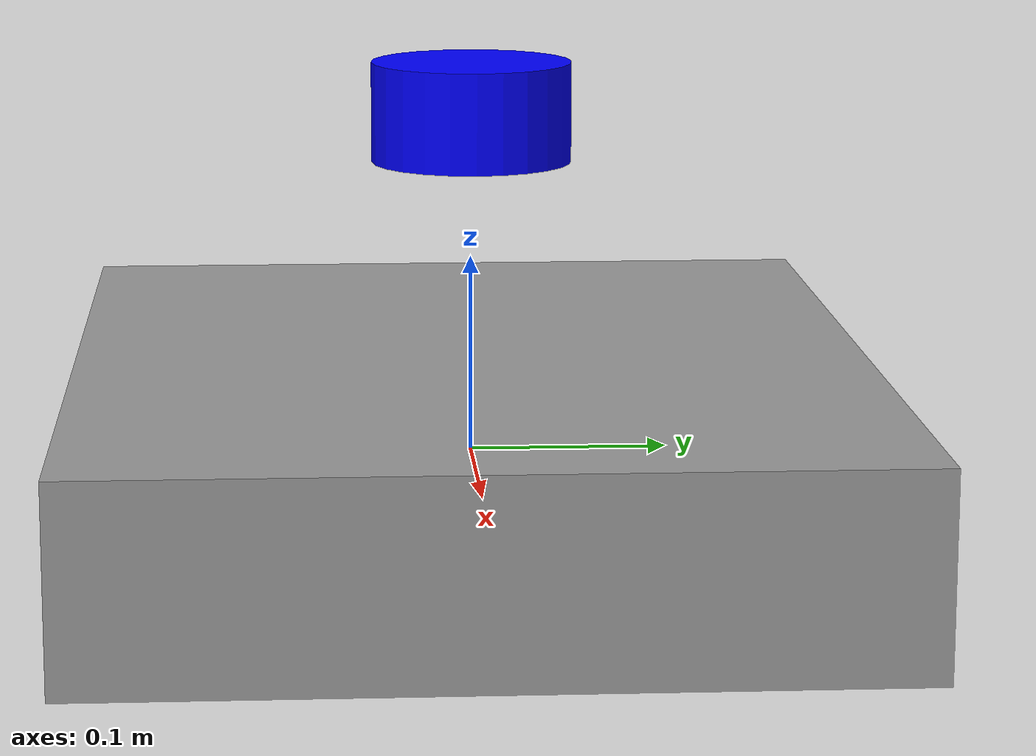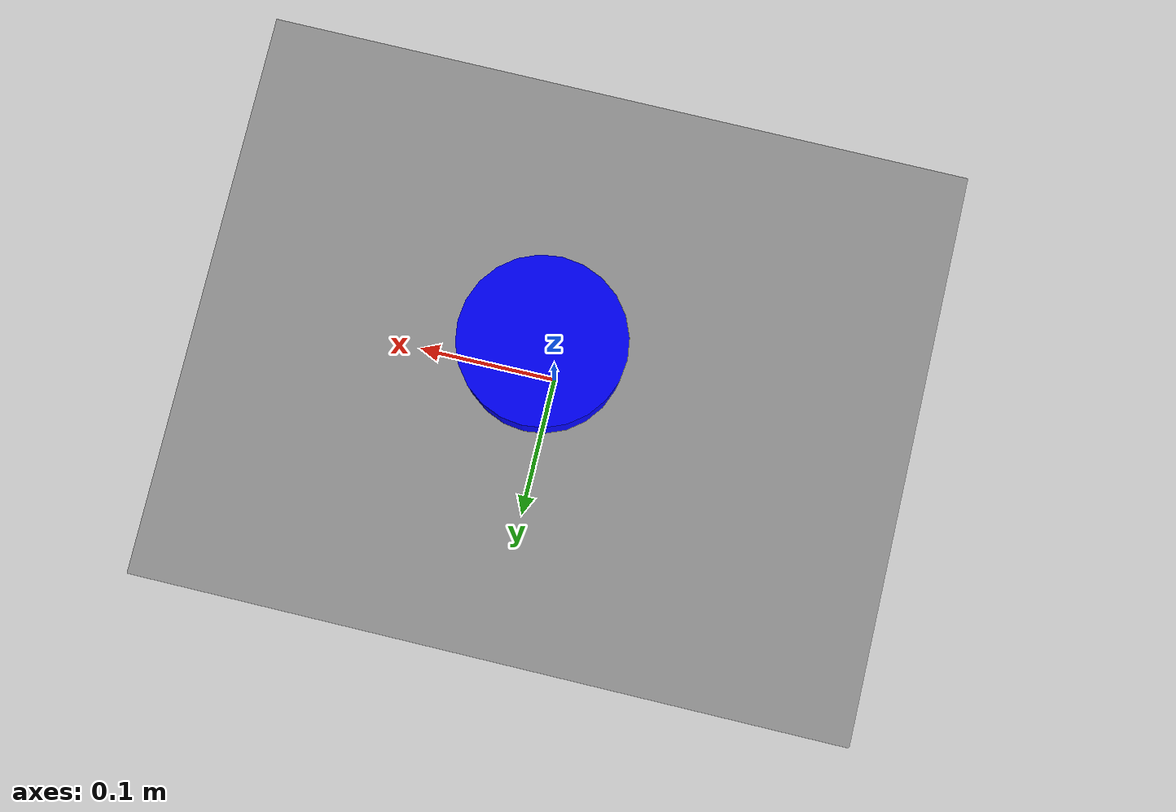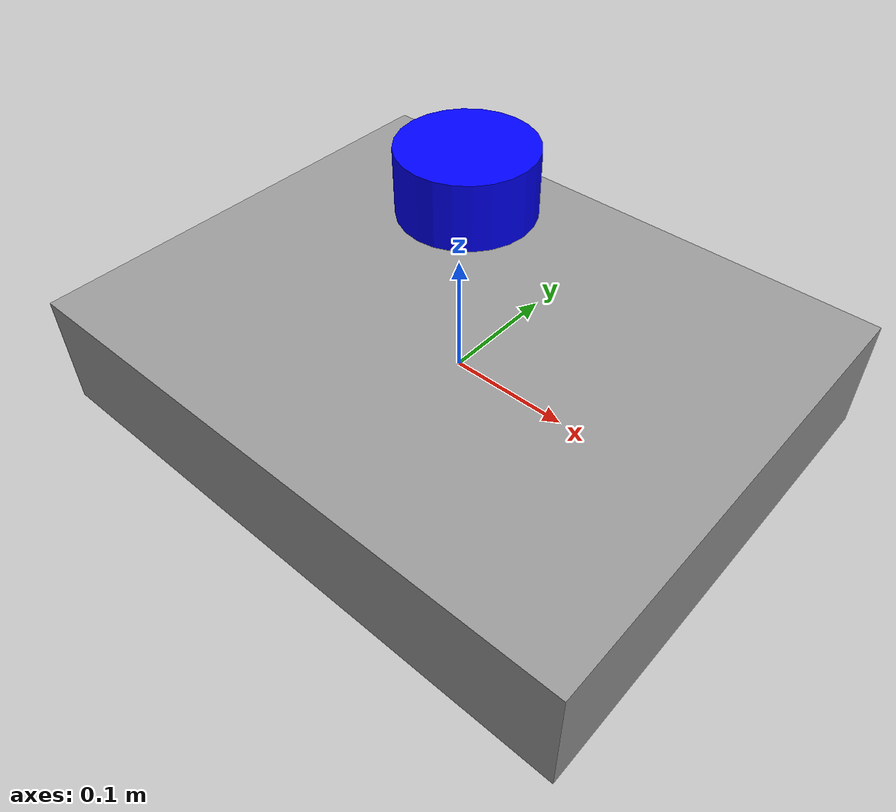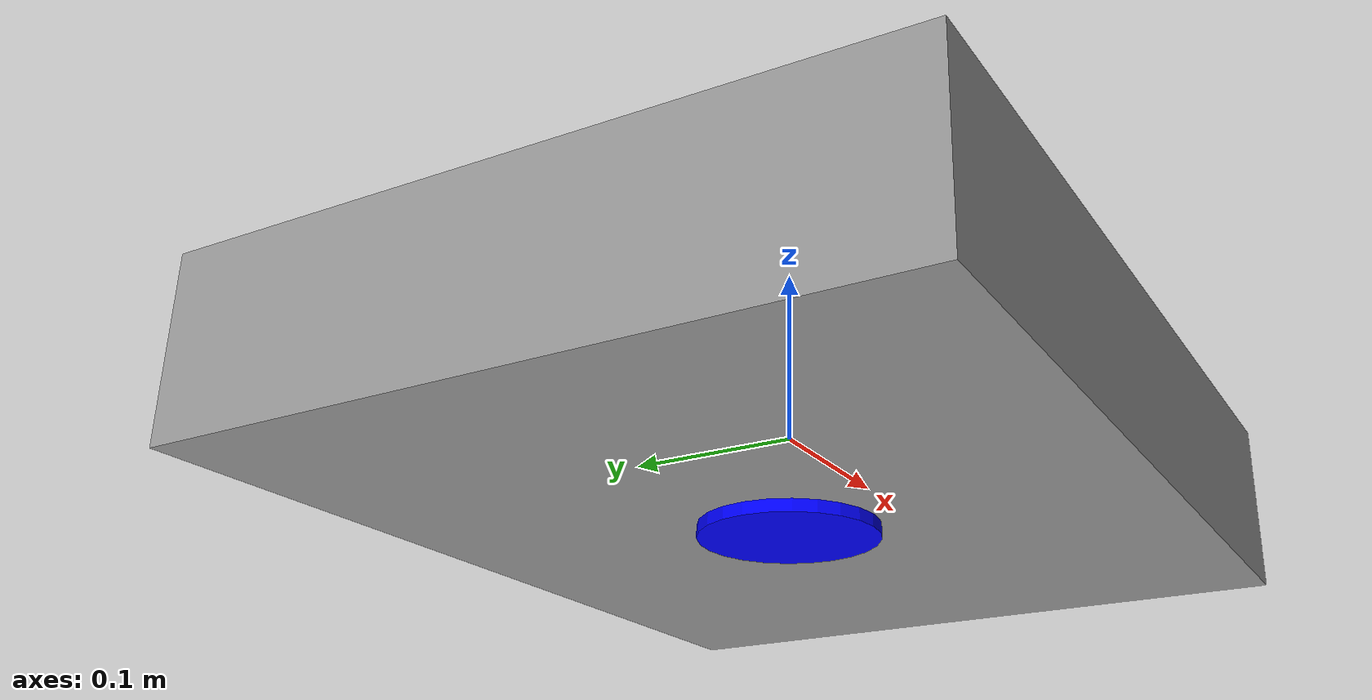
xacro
<?xml version="1.0"?>
<robot name="diff_drive_robot" xmlns:xacro="http://ros.org/wiki/xacro">

  <!-- === Robot Dimensions === -->
  <xacro:property name="wheel_base" value="0.150"/>     <!-- Left to right distance -->
  <xacro:property name="wheel_throw" value="0.1"/>    <!-- Front to back distance -->
  <xacro:property name="wheel_radius" value="0.032"/> <!-- 64mm diameter wheels -->
  <xacro:property name="wheel_width" value="0.025"/>   <!-- Estimated wheel thickness -->
  <xacro:property name="lidar_height" value="0.175"/>   <!-- 200mm above axle -->

<!-- === Base Footprint === -->
  <link name="base_footprint">
    <visual>
      <geometry>
        <cylinder radius="0.05" length="0.05"/>
      </geometry>
      <material name="blue"><color rgba="0 0 1 1"/></material>
    </visual>
  </link>

  <!-- === Base Link === -->
  <link name="base_link">
    <visual>
      <geometry>
        <box size="0.5 0.4 0.1"/>
      </geometry>
      <material name="gray">
        <color rgba="0.6 0.6 0.6 1"/>
      </material>
    </visual>
    <collision>
      <geometry>
        <box size="0.5 0.4 0.1"/>
      </geometry>
    </collision>
  </link>

  <!-- === Wheel Macro === -->
  <xacro:macro name="wheel" params="prefix x y">
    <link name="${prefix}">
      <visual>
        <geometry>
          <cylinder radius="${wheel_radius}" length="${wheel_width}"/>
        </geometry>
        <material name="black"><color rgba="0.1 0.1 0.1 1"/></material>
      </visual>
      <collision>
        <geometry>
          <cylinder radius="${wheel_radius}" length="${wheel_width}"/>
        </geometry>
      </collision>
      <inertial>
        <mass value="0.5"/>
        <origin xyz="0 0 0" rpy="0 0 0"/>
        <inertia ixx="0.01" iyy="0.01" izz="0.01"
                 ixy="0.0" ixz="0.0" iyz="0.0"/>
      </inertial>
    </link>

    <joint name="${prefix}_joint" type="continuous">
      <parent link="base_link"/>
      <child link="${prefix}"/>
      <origin xyz="${x} ${y} 0" rpy="0 1.5708 0"/>
      <axis xyz="0 1 0"/>
    </joint>
  </xacro:macro>

  <!-- === Wheels === -->
  <xacro:wheel prefix="wheel_fl" x="${wheel_throw / 2}" y="${wheel_base / 2}"/>
  <xacro:wheel prefix="wheel_fr" x="${wheel_throw / 2}" y="${-wheel_base / 2}"/>
  <xacro:wheel prefix="wheel_rl" x="${-wheel_throw / 2}" y="${wheel_base / 2}"/>
  <xacro:wheel prefix="wheel_rr" x="${-wheel_throw / 2}" y="${-wheel_base / 2}"/>

  <!-- === LIDAR === -->
  <link name="lidar_link">
    <visual>
      <geometry>
        <cylinder radius="0.05" length="0.05"/>
      </geometry>
      <material name="blue"><color rgba="0 0 1 1"/></material>
    </visual>
  </link>

  <joint name="lidar_joint" type="fixed">
    <parent link="base_link"/>
    <child link="lidar_link"/>
    <origin xyz="0.007 0 ${lidar_height}" rpy="0 0 0"/>
  </joint>

    <joint name="base_joint" type="fixed">
    <parent link="base_link"/>
    <child link="base_footprint"/>
    <origin xyz="0.0 0 -${wheel_radius}" rpy="0 0 0"/>
  </joint>

</robot>
